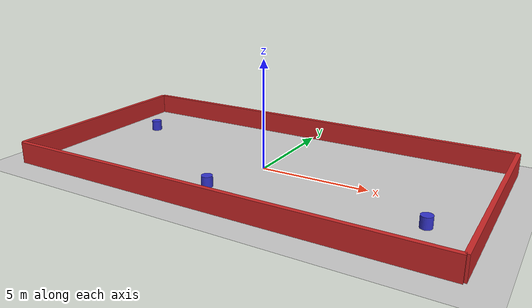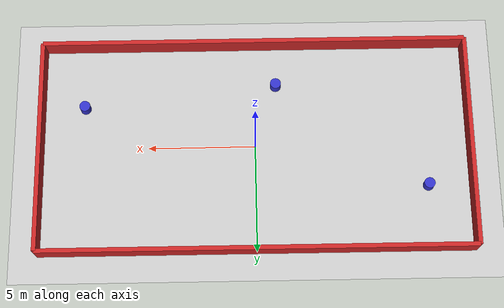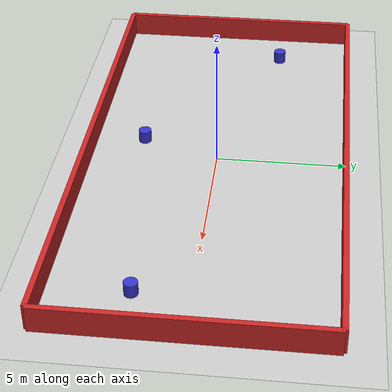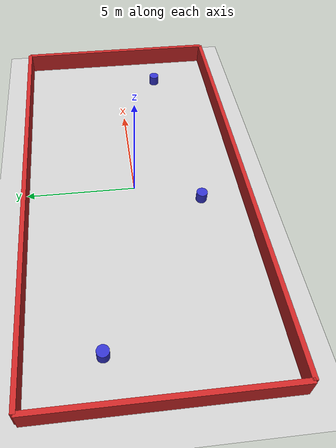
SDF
<?xml version="1.0" encoding="UTF-8"?>
<sdf version="1.9">
  <world name="arena">

    <!-- Core world systems -->
    <plugin filename="gz-sim-physics-system" name="gz::sim::systems::Physics"/>
    <plugin filename="gz-sim-user-commands-system" name="gz::sim::systems::UserCommands"/>
    <plugin filename="gz-sim-scene-broadcaster-system" name="gz::sim::systems::SceneBroadcaster"/>

    <gravity>0 0 -9.81</gravity>

    <!-- Scene + lighting to match your generator script -->
    <scene>
      <ambient>0.7 0.7 0.7 1</ambient>
      <background>0.8 0.9 1 1</background>
    </scene>

    <light name="sun" type="directional">
      <cast_shadows>false</cast_shadows>
      <pose>0 0 10 0 0 0</pose>
      <diffuse>1 1 1 1</diffuse>
      <specular>0.0 0.0 0.0 1</specular>
      <direction>-0.5 0.2 -1</direction>
      <attenuation>
        <range>100</range>
        <constant>0.9</constant>
        <linear>0.01</linear>
        <quadratic>0.001</quadratic>
      </attenuation>
    </light>

    <!-- Ground -->
    <model name="ground_plane">
      <static>true</static>
      <link name="link">
        <collision name="collision">
          <geometry>
            <plane>
              <normal>0 0 1</normal>
              <size>50 50</size>
            </plane>
          </geometry>
          <surface>
            <friction>
              <ode>
                <mu>1.0</mu>
                <mu2>1.0</mu2>
              </ode>
            </friction>
          </surface>
        </collision>
        <visual name="visual">
          <geometry>
            <plane>
              <normal>0 0 1</normal>
              <size>50 50</size>
            </plane>
          </geometry>
          <material>
            <ambient>0.8 0.8 0.8 1</ambient>
            <diffuse>0.8 0.8 0.8 1</diffuse>
            <specular>0.0 0.0 0.0 1</specular>
          </material>
        </visual>
      </link>
    </model>

    <!-- Walls -->
    <model name="wall_north">
      <static>true</static>
      <pose>0 5 0.5 0 0 0</pose>
      <link name="link">
        <collision name="collision">
          <geometry>
            <box><size>20 0.2 1.0</size></box>
          </geometry>
        </collision>
        <visual name="visual">
          <geometry>
            <box><size>20 0.2 1.0</size></box>
          </geometry>
          <material>
            <ambient>0.8 0.15 0.15 1</ambient>
            <diffuse>0.8 0.15 0.15 1</diffuse>
            <specular>0.0 0.0 0.0 1</specular>
          </material>
        </visual>
      </link>
    </model>

    <model name="wall_south">
      <static>true</static>
      <pose>0 -5 0.5 0 0 0</pose>
      <link name="link">
        <collision name="collision">
          <geometry>
            <box><size>20 0.2 1.0</size></box>
          </geometry>
        </collision>
        <visual name="visual">
          <geometry>
            <box><size>20 0.2 1.0</size></box>
          </geometry>
          <material>
            <ambient>0.8 0.15 0.15 1</ambient>
            <diffuse>0.8 0.15 0.15 1</diffuse>
            <specular>0.0 0.0 0.0 1</specular>
          </material>
        </visual>
      </link>
    </model>

    <model name="wall_east">
      <static>true</static>
      <pose>10 0 0.5 0 0 0</pose>
      <link name="link">
        <collision name="collision">
          <geometry>
            <box><size>0.2 10 1.0</size></box>
          </geometry>
        </collision>
        <visual name="visual">
          <geometry>
            <box><size>0.2 10 1.0</size></box>
          </geometry>
          <material>
            <ambient>0.8 0.15 0.15 1</ambient>
            <diffuse>0.8 0.15 0.15 1</diffuse>
            <specular>0.0 0.0 0.0 1</specular>
          </material>
        </visual>
      </link>
    </model>

    <model name="wall_west">
      <static>true</static>
      <pose>-10 0 0.5 0 0 0</pose>
      <link name="link">
        <collision name="collision">
          <geometry>
            <box><size>0.2 10 1.0</size></box>
          </geometry>
        </collision>
        <visual name="visual">
          <geometry>
            <box><size>0.2 10 1.0</size></box>
          </geometry>
          <material>
            <ambient>0.8 0.15 0.15 1</ambient>
            <diffuse>0.8 0.15 0.15 1</diffuse>
            <specular>0.0 0.0 0.0 1</specular>
          </material>
        </visual>
      </link>
    </model>

    <!-- Stationary cylinder -->
    <model name="cylinder_stationary">
      <static>true</static>
      <pose>-1 -3 0.25 0 0 0</pose>
      <link name="link">
        <collision name="collision">
          <geometry>
            <cylinder>
              <radius>0.25</radius>
              <length>0.5</length>
            </cylinder>
          </geometry>
          <surface>
            <friction>
              <ode>
                <mu>1.0</mu>
                <mu2>1.0</mu2>
              </ode>
            </friction>
          </surface>
        </collision>
        <visual name="visual">
          <geometry>
            <cylinder>
              <radius>0.25</radius>
              <length>0.5</length>
            </cylinder>
          </geometry>
          <material>
            <ambient>0.2 0.2 0.8 1</ambient>
            <diffuse>0.2 0.2 0.8 1</diffuse>
            <specular>0 0 0 1</specular>
          </material>
        </visual>
      </link>
    </model>

    <!-- Moving cylinder 1-->
    <model name="cylinder_moving_1">
      <static>false</static>
      <pose>-8 2 0.25 0 0 0</pose>

      <link name="base_link">
        <inertial>
          <mass>2.0</mass>
          <inertia>
            <ixx>0.02</ixx>
            <ixy>0.0</ixy>
            <ixz>0.0</ixz>
            <iyy>0.02</iyy>
            <iyz>0.0</iyz>
            <izz>0.02</izz>
          </inertia>
        </inertial>

        <collision name="collision">
          <geometry>
            <cylinder>
              <radius>0.25</radius>
              <length>0.5</length>
            </cylinder>
          </geometry>
          <surface>
            <friction>
              <ode>
                <mu>0.3</mu>
                <mu2>0.3</mu2>
              </ode>
            </friction>
          </surface>
        </collision>

        <visual name="visual">
          <geometry>
            <cylinder>
              <radius>0.25</radius>
              <length>0.5</length>
            </cylinder>
          </geometry>
          <material>
            <ambient>0.2 0.2 0.8 1</ambient>
            <diffuse>0.2 0.2 0.8 1</diffuse>
            <specular>0 0 0 1</specular>
          </material>
        </visual>
      </link>

      <plugin filename="gz-sim-velocity-control-system"
          name="gz::sim::systems::VelocityControl">
        <link_name>base_link</link_name>
      </plugin>

    </model>

    <!-- Moving cylinder 2-->
    <model name="cylinder_moving_2">
      <static>false</static>
      <pose>8 -2 0.25 0 0 0</pose>

      <link name="base_link">
        <inertial>
          <mass>2.0</mass>
          <inertia>
            <ixx>0.02</ixx>
            <ixy>0.0</ixy>
            <ixz>0.0</ixz>
            <iyy>0.02</iyy>
            <iyz>0.0</iyz>
            <izz>0.02</izz>
          </inertia>
        </inertial>

        <collision name="collision">
          <geometry>
            <cylinder>
              <radius>0.25</radius>
              <length>0.5</length>
            </cylinder>
          </geometry>
          <surface>
            <friction>
              <ode>
                <mu>0.3</mu>
                <mu2>0.3</mu2>
              </ode>
            </friction>
          </surface>
        </collision>

        <visual name="visual">
          <geometry>
            <cylinder>
              <radius>0.25</radius>
              <length>0.5</length>
            </cylinder>
          </geometry>
          <material>
            <ambient>0.2 0.2 0.8 1</ambient>
            <diffuse>0.2 0.2 0.8 1</diffuse>
            <specular>0 0 0 1</specular>
          </material>
        </visual>
      </link>

      <plugin filename="gz-sim-velocity-control-system"
          name="gz::sim::systems::VelocityControl">
        <link_name>base_link</link_name>
      </plugin>

    </model>

  </world>
</sdf>
